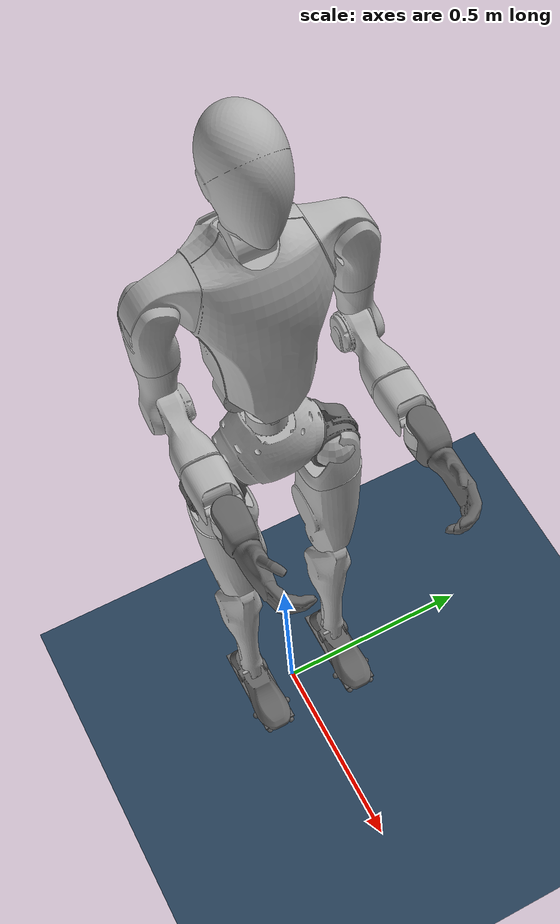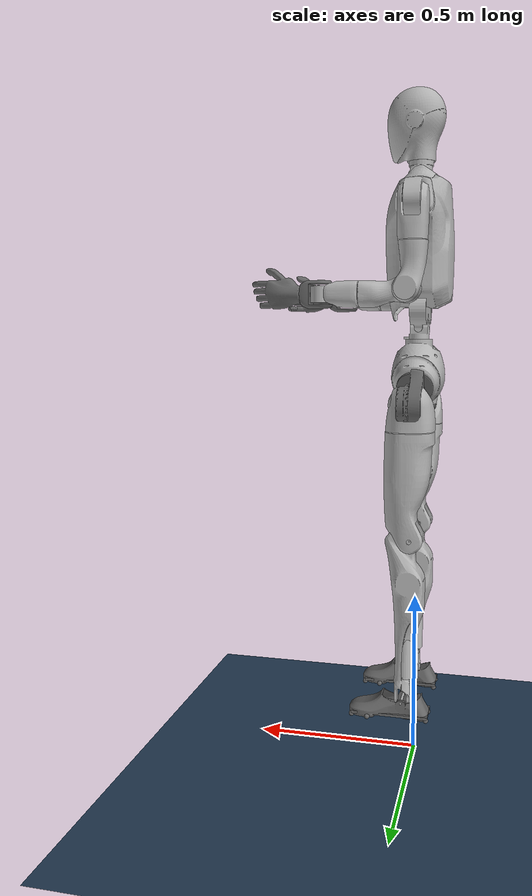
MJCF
<mujoco model="Unitree H2">
  <include file="h2_mujoco.xml"/>
  <statistic center="1 0.7 1.5" extent="0.8"/>
  <visual>
    <headlight diffuse="0.6 0.6 0.6" ambient="0.3 0.3 0.3" specular="0 0 0"/>
    <rgba haze="0.15 0.25 0.35 1"/>
    <global azimuth="-140" elevation="-30"/>
  </visual>
  <asset>
    <texture type="skybox" builtin="flat" rgb1="0 0 0" rgb2="0 0 0" width="512" height="3072"/>
    <texture type="2d" name="groundplane" builtin="checker" mark="edge" rgb1="0.2 0.3 0.4" rgb2="0.1 0.2 0.3" markrgb="0.8 0.8 0.8" width="300" height="300"/>
    <material name="groundplane" texture="groundplane" texuniform="true" texrepeat="5 5" reflectance="0.2"/>
  </asset>
  <worldbody>
    <light pos="0 0 1.5" dir="0 0 -1" directional="true"/>
    <geom name="floor" size="0 0 0.05" type="plane" material="groundplane"/>
  </worldbody>
</mujoco>

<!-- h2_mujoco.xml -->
<mujoco model="H2">
  <compiler angle="radian" meshdir="meshes/"/>

  <default>
     <joint damping="0.05" armature="0.01" frictionloss="0.2"/>
  </default>

  <option timestep="0.001"/>
  <asset>
    <mesh name="pelvis" content_type="model/stl" file="pelvis.stl"/>
    <mesh name="left_hip_pitch_link" content_type="model/stl" file="left_hip_pitch_link.stl"/>
    <mesh name="left_hip_roll_link" content_type="model/stl" file="left_hip_roll_link.stl"/>
    <mesh name="left_hip_yaw_link" content_type="model/stl" file="left_hip_yaw_link.stl"/>
    <mesh name="left_knee_link" content_type="model/stl" file="left_knee_link.stl"/>
    <mesh name="left_ankle_roll_link" content_type="model/stl" file="left_ankle_roll_link.stl"/>
    <mesh name="left_ankle_pitch_link" content_type="model/stl" file="left_ankle_pitch_link.stl"/>
    <mesh name="right_hip_pitch_link" content_type="model/stl" file="right_hip_pitch_link.stl"/>
    <mesh name="right_hip_roll_link" content_type="model/stl" file="right_hip_roll_link.stl"/>
    <mesh name="right_hip_yaw_link" content_type="model/stl" file="right_hip_yaw_link.stl"/>
    <mesh name="right_knee_link" content_type="model/stl" file="right_knee_link.stl"/>
    <mesh name="right_ankle_roll_link" content_type="model/stl" file="right_ankle_roll_link.stl"/>
    <mesh name="right_ankle_pitch_link" content_type="model/stl" file="right_ankle_pitch_link.stl"/>
    <mesh name="waist_yaw_link" content_type="model/stl" file="waist_yaw_link.stl"/>
    <mesh name="waist_roll_link" content_type="model/stl" file="waist_roll_link.stl"/>
    <mesh name="torso_link" content_type="model/stl" file="torso_link.stl"/>
    <mesh name="head_pitch_link" content_type="model/stl" file="head_pitch_link.stl"/>
    <mesh name="head_yaw_link" content_type="model/stl" file="head_yaw_link.stl"/>
    <mesh name="left_shoulder_pitch_link" content_type="model/stl" file="left_shoulder_pitch_link.stl"/>
    <mesh name="left_shoulder_roll_link" content_type="model/stl" file="left_shoulder_roll_link.stl"/>
    <mesh name="left_shoulder_yaw_link" content_type="model/stl" file="left_shoulder_yaw_link.stl"/>
    <mesh name="left_elbow_link" content_type="model/stl" file="left_elbow_link.stl"/>
    <mesh name="left_wrist_roll_link" content_type="model/stl" file="left_wrist_roll_link.stl"/>
    <mesh name="left_wrist_pitch_link" content_type="model/stl" file="left_wrist_pitch_link.stl"/>
    <mesh name="left_wrist_yaw_link" content_type="model/stl" file="left_wrist_yaw_link.stl"/>
    <mesh name="right_shoulder_pitch_link" content_type="model/stl" file="right_shoulder_pitch_link.stl"/>
    <mesh name="right_shoulder_roll_link" content_type="model/stl" file="right_shoulder_roll_link.stl"/>
    <mesh name="right_shoulder_yaw_link" content_type="model/stl" file="right_shoulder_yaw_link.stl"/>
    <mesh name="right_elbow_link" content_type="model/stl" file="right_elbow_link.stl"/>
    <mesh name="right_wrist_roll_link" content_type="model/stl" file="right_wrist_roll_link.stl"/>
    <mesh name="right_wrist_pitch_link" content_type="model/stl" file="right_wrist_pitch_link.stl"/>
    <mesh name="right_wrist_yaw_link" content_type="model/stl" file="right_wrist_yaw_link.stl"/>
  </asset>

  <worldbody>
    <body name="pelvis" pos="0 0 1.2">
      <site name="imu" size="0.01" pos="0.0 0.0 0.0"/>
      <joint name="floating_base_joint" type="free" limited="false" actuatorfrclimited="false"/>
    <geom type="mesh" contype="0" conaffinity="0" group="1" density="0" rgba="0.7 0.7 0.7 1" mesh="pelvis"/>
    <geom type="mesh" rgba="0.7 0.7 0.7 1" mesh="pelvis"/>
    <body name="left_hip_pitch_link" pos="0 0.08038 -0.046407" quat="0.965926 -0.25882 0 0">
      <inertial pos="0.00294368 0.061102 -0.017351" quat="0.89044 0.453883 -0.0133707 -0.0304704" mass="2.8737" diaginertia="0.00537408 0.00421163 0.0036878"/>
      <joint name="left_hip_pitch_joint" pos="0 0 0" axis="0 1 0" range="-2.4526 2.77542" actuatorfrcrange="-360 360"/>
      <geom type="mesh" contype="0" conaffinity="0" group="1" density="0" rgba="0.4 0.4 0.4 1" mesh="left_hip_pitch_link"/>
      <body name="left_hip_roll_link" pos="0.041774 0.0635 -0.019" quat="0.965926 0.25882 0 0">
        <inertial pos="-0.0175789 -0.00607425 -0.041315" quat="-0.165515 0.598251 -0.0524355 0.782273" mass="0.785079" diaginertia="0.0023778 0.00200443 0.0015153"/>
        <joint name="left_hip_roll_joint" pos="0 0 0" axis="1 0 0" range="-0.467441 2.16886" actuatorfrcrange="-360 360"/>
        <geom type="mesh" contype="0" conaffinity="0" group="1" density="0" rgba="0.7 0.7 0.7 1" mesh="left_hip_roll_link"/>
        <geom size="0.05" pos="-0.02 0 0" rgba="0.7 0.7 0.7 1"/>
        <body name="left_hip_yaw_link" pos="-0.028187 -0.0095 -0.0737">
          <inertial pos="0.00069408 -0.0108659 -0.113015" quat="0.621956 -0.0405938 0.0198649 0.781747" mass="7.0875" diaginertia="0.0514013 0.0505964 0.0130063"/>
          <joint name="left_hip_yaw_joint" pos="0 0 0" axis="0 0 1" range="-2.827 2.827" actuatorfrcrange="-360 360"/>
          <geom type="mesh" contype="0" conaffinity="0" group="1" density="0" rgba="0.7 0.7 0.7 1" mesh="left_hip_yaw_link"/>
          <geom type="mesh" rgba="0.7 0.7 0.7 1" mesh="left_hip_yaw_link"/>
          <body name="left_knee_link" pos="-0.010308 0.022549 -0.31959">
            <inertial pos="0.00461331 -0.022549 -0.167155" quat="0.689662 0.00325283 0.00290593 0.724118" mass="4.3534" diaginertia="0.0512388 0.0510884 0.00333998"/>
            <joint name="left_knee_joint" pos="0 0 0" axis="0 1 0" range="-0.08725 2.53025" actuatorfrcrange="-360 360"/>
            <geom type="mesh" contype="0" conaffinity="0" group="1" density="0" rgba="0.7 0.7 0.7 1" mesh="left_knee_link"/>
            <geom size="0.025 0.175" pos="0.01 -0.022549 -0.25" type="cylinder" rgba="0.7 0.7 0.7 1"/>
            <body name="left_ankle_roll_link" pos="0.032719 -0.023002 -0.49662">
              <inertial pos="-0.0174063 6.424e-05 -0.0002146" quat="0.499157 0.502573 -0.497809 0.500449" mass="0.123182" diaginertia="4.00501e-05 3.43207e-05 1.44993e-05"/>
              <joint name="left_ankle_roll_joint" pos="0 0 0" axis="1 0 0" range="-0.349066 0.296706" actuatorfrcrange="-19 19"/>
              <geom type="mesh" contype="0" conaffinity="0" group="1" density="0" rgba="0.7 0.7 0.7 1" mesh="left_ankle_roll_link"/>
              <body name="left_ankle_pitch_link" pos="-0.014516 -0.0373 0">
                <inertial pos="0.032059 0.0370053 -0.0288282" quat="6.19452e-05 0.72345 -3.0004e-05 0.690377" mass="0.894967" diaginertia="0.00438317 0.00410964 0.000599978"/>
                <joint name="left_ankle_pitch_joint" pos="0 0 0" axis="0 1 0" range="-1.13446 0.610865" actuatorfrcrange="-66.88 66.88"/>
                <geom type="mesh" contype="0" conaffinity="0" group="1" density="0" rgba="0.4 0.4 0.4 1" mesh="left_ankle_pitch_link"/>
                <geom size="0.008" pos="-0.075 0.066 -0.05" rgba="0.4 0.4 0.4 1"/>
                <geom size="0.008" pos="-0.075 0.007 -0.05" rgba="0.4 0.4 0.4 1"/>
                <geom size="0.008" pos="0.1 0.08 -0.048" rgba="0.4 0.4 0.4 1"/>
                <geom size="0.008" pos="0.1 -0.007 -0.048" rgba="0.4 0.4 0.4 1"/>
                <geom size="0.008" pos="0.15 0.066 -0.05" rgba="0.4 0.4 0.4 1"/>
                <geom size="0.008" pos="0.15 0.007 -0.05" rgba="0.4 0.4 0.4 1"/>
                <geom size="0.115 0.04 0.004" pos="0.035 0.0365 -0.04" type="box" rgba="0.4 0.4 0.4 1"/>
              </body>
            </body>
          </body>
        </body>
      </body>
    </body>
    <body name="right_hip_pitch_link" pos="0 -0.08038 -0.046407" quat="0.965926 0.25882 0 0">
      <inertial pos="0.00294368 -0.061102 -0.017351" quat="0.453883 0.89044 0.0304704 0.0133707" mass="2.8737" diaginertia="0.00537408 0.00421163 0.0036878"/>
      <joint name="right_hip_pitch_joint" pos="0 0 0" axis="0 1 0" range="-2.4526 2.77542" actuatorfrcrange="-360 360"/>
      <geom type="mesh" contype="0" conaffinity="0" group="1" density="0" rgba="0.4 0.4 0.4 1" mesh="right_hip_pitch_link"/>
      <body name="right_hip_roll_link" pos="0.041774 -0.0635 -0.019" quat="0.965926 -0.25882 0 0">
        <inertial pos="-0.0175789 0.00607425 -0.041315" quat="0.165515 0.598251 0.0524355 0.782273" mass="0.75122" diaginertia="0.0023778 0.00200443 0.0015153"/>
        <joint name="right_hip_roll_joint" pos="0 0 0" axis="1 0 0" range="-2.16886 0.467441" actuatorfrcrange="-360 360"/>
        <geom type="mesh" contype="0" conaffinity="0" group="1" density="0" rgba="0.7 0.7 0.7 1" mesh="right_hip_roll_link"/>
        <geom size="0.05" pos="-0.038 0 0" rgba="0.7 0.7 0.7 1"/>
        <body name="right_hip_yaw_link" pos="-0.028187 0.0095 -0.0737">
          <inertial pos="0.00069408 0.0108659 -0.113015" quat="0.781747 0.0198649 -0.0405938 0.621956" mass="7.0875" diaginertia="0.0514013 0.0505964 0.0130063"/>
          <joint name="right_hip_yaw_joint" pos="0 0 0" axis="0 0 1" range="-2.827 2.827" actuatorfrcrange="-360 360"/>
          <geom type="mesh" contype="0" conaffinity="0" group="1" density="0" rgba="0.7 0.7 0.7 1" mesh="right_hip_yaw_link"/>
          <geom type="mesh" rgba="0.7 0.7 0.7 1" mesh="right_hip_yaw_link"/>
          <body name="right_knee_link" pos="-0.010308 -0.022549 -0.31959">
            <inertial pos="0.00461331 0.022549 -0.167155" quat="0.724118 0.00290593 0.00325283 0.689662" mass="4.3534" diaginertia="0.0512388 0.0510884 0.00333998"/>
            <joint name="right_knee_joint" pos="0 0 0" axis="0 1 0" range="-0.08725 2.53025" actuatorfrcrange="-360 360"/>
            <geom type="mesh" contype="0" conaffinity="0" group="1" density="0" rgba="0.7 0.7 0.7 1" mesh="right_knee_link"/>
            <geom size="0.025 0.175" pos="0.01 0.022549 -0.25" type="cylinder" rgba="0.7 0.7 0.7 1"/>
            <body name="right_ankle_roll_link" pos="0.032719 0.023002 -0.49662">
              <inertial pos="-0.0174063 -6.424e-05 -0.0002146" quat="0.502573 0.499157 -0.500449 0.497809" mass="0.123182" diaginertia="4.00501e-05 3.43207e-05 1.44993e-05"/>
              <joint name="right_ankle_roll_joint" pos="0 0 0" axis="1 0 0" range="-0.296706 0.349066" actuatorfrcrange="-19 19"/>
              <geom type="mesh" contype="0" conaffinity="0" group="1" density="0" rgba="0.7 0.7 0.7 1" mesh="right_ankle_roll_link"/>
              <body name="right_ankle_pitch_link" pos="-0.014516 0.0373 0">
                <inertial pos="0.032059 -0.0370053 -0.0288282" quat="-6.19452e-05 0.72345 3.0004e-05 0.690377" mass="0.894967" diaginertia="0.00438317 0.00410964 0.000599978"/>
                <joint name="right_ankle_pitch_joint" pos="0 0 0" axis="0 1 0" range="-1.13446 0.610865" actuatorfrcrange="-66.88 66.88"/>
                <geom type="mesh" contype="0" conaffinity="0" group="1" density="0" rgba="0.4 0.4 0.4 1" mesh="right_ankle_pitch_link"/>
                <geom size="0.008" pos="-0.075 -0.066 -0.05" rgba="0.4 0.4 0.4 1"/>
                <geom size="0.008" pos="-0.075 -0.007 -0.05" rgba="0.4 0.4 0.4 1"/>
                <geom size="0.008" pos="0.1 -0.08 -0.048" rgba="0.4 0.4 0.4 1"/>
                <geom size="0.008" pos="0.1 0.007 -0.048" rgba="0.4 0.4 0.4 1"/>
                <geom size="0.008" pos="0.15 -0.066 -0.05" rgba="0.4 0.4 0.4 1"/>
                <geom size="0.008" pos="0.15 -0.007 -0.05" rgba="0.4 0.4 0.4 1"/>
                <geom size="0.115 0.04 0.004" pos="0.035 -0.0365 -0.04" type="box" rgba="0.4 0.4 0.4 1"/>
              </body>
            </body>
          </body>
        </body>
      </body>
    </body>
    <body name="waist_yaw_link" pos="0 0 0.090537">
      <inertial pos="0.00648295 1.018e-05 0.0176063" quat="0.000115436 0.720073 0.000256241 0.693898" mass="0.312936" diaginertia="0.00033891 0.00028436 0.00012018"/>
      <joint name="waist_yaw_joint" pos="0 0 0" axis="0 0 1" range="-1.7453 1.7453" actuatorfrcrange="-120 120"/>
      <geom type="mesh" contype="0" conaffinity="0" group="1" density="0" rgba="0.7 0.7 0.7 1" mesh="waist_yaw_link"/>
      <body name="waist_roll_link" pos="0 0 0.0325">
        <inertial pos="0 0.00061119 0" quat="0.5 0.5 -0.5 0.5" mass="0.138419" diaginertia="2.304e-05 1.668e-05 1.509e-05"/>
        <joint name="waist_roll_joint" pos="0 0 0" axis="1 0 0" range="-0.5236 0.5236" actuatorfrcrange="-180 180"/>
        <geom type="mesh" contype="0" conaffinity="0" group="1" density="0" rgba="0.7 0.7 0.7 1" mesh="waist_roll_link"/>
        <body name="torso_link">
          <site name="secondary_imu" size="0.01" pos="0.0 0.0 0.0"/>
          <inertial pos="0.00740421 0.00628045 0.215575" quat="0.99932 -0.0321662 -0.00775231 0.0162839" mass="18.532" diaginertia="0.287321 0.26278 0.0934525"/>
          <joint name="waist_pitch_joint" pos="0 0 0" axis="0 1 0" range="-0.43633 0.5236" actuatorfrcrange="-180 180"/>
          <geom type="mesh" contype="0" conaffinity="0" group="1" density="0" rgba="0.7 0.7 0.7 1" mesh="torso_link"/>
          <geom type="mesh" rgba="0.7 0.7 0.7 1" mesh="torso_link"/>
          <body name="head_pitch_link" pos="-0.0001147 -0.0189 0.4218">
            <inertial pos="0.000126 0.018817 0.052939" quat="0.999996 -0.000955249 -0.00262397 -0.000580497" mass="1.82" diaginertia="0.00538697 0.00532442 0.00140982"/>
            <joint name="head_pitch_joint" pos="0 0 0" axis="0 1 0" range="-0.5236 0.83775" actuatorfrcrange="-50 50"/>
            <geom type="mesh" contype="0" conaffinity="0" group="1" density="0" rgba="0.7 0.7 0.7 1" mesh="head_pitch_link"/>
            <body name="head_yaw_link" pos="0 0.0189 0.1335">
              <inertial pos="0.023654 -0.000734 0.042315" quat="0.667311 -0.227767 -0.231751 0.670156" mass="1.3" diaginertia="0.00535274 0.00472336 0.00378091"/>
              <joint name="head_yaw_joint" pos="0 0 0" axis="0 0 1" range="-1.7453 1.7453" actuatorfrcrange="-50 50"/>
              <geom type="mesh" contype="0" conaffinity="0" group="1" density="0" rgba="0.7 0.7 0.7 1" mesh="head_yaw_link"/>
              <geom type="mesh" rgba="0.7 0.7 0.7 1" mesh="head_yaw_link"/>
            </body>
          </body>
          <body name="left_shoulder_pitch_link" pos="0.0030848 0.11 0.36008" quat="0.990959 0.134164 0 0">
            <inertial pos="-0.0027817 0.050393 -0.023914" quat="0.959427 0.279803 0.00644957 0.0341716" mass="1.1927" diaginertia="0.00174925 0.00162902 0.000852428"/>
            <joint name="left_shoulder_pitch_joint" pos="0 0 0" axis="0 1 0" range="-2.618 1.833" actuatorfrcrange="-130 130"/>
            <geom type="mesh" contype="0" conaffinity="0" group="1" density="0" rgba="0.7 0.7 0.7 1" mesh="left_shoulder_pitch_link"/>
            <geom type="mesh" rgba="0.7 0.7 0.7 1" mesh="left_shoulder_pitch_link"/>
            <body name="left_shoulder_roll_link" pos="-0.0032074 0.059938 -0.039865" quat="0.990959 -0.134164 0 0">
              <inertial pos="-0.00126759 0.00399799 -0.0665267" quat="0.719226 0.0130341 -0.00543937 0.694633" mass="1.10983" diaginertia="0.00193836 0.00176489 0.00106378"/>
              <joint name="left_shoulder_roll_joint" pos="0 0 0" axis="1 0 0" range="-0.517 2.494" actuatorfrcrange="-60 60"/>
              <geom type="mesh" contype="0" conaffinity="0" group="1" density="0" rgba="0.7 0.7 0.7 1" mesh="left_shoulder_roll_link"/>
              <geom type="mesh" rgba="0.7 0.7 0.7 1" mesh="left_shoulder_roll_link"/>
              <body name="left_shoulder_yaw_link" pos="-0.0025601 0.0036752 -0.10421">
                <inertial pos="0.00265957 0.0123454 -0.059622" quat="0.655577 0.0514587 -0.154929 0.737271" mass="0.352739" diaginertia="0.000897689 0.000854204 0.000287447"/>
                <joint name="left_shoulder_yaw_joint" pos="0 0 0" axis="0 0 1" range="-2.618 2.618" actuatorfrcrange="-60 60"/>
                <geom type="mesh" contype="0" conaffinity="0" group="1" density="0" rgba="0.7 0.7 0.7 1" mesh="left_shoulder_yaw_link"/>
                <geom type="mesh" rgba="0.7 0.7 0.7 1" mesh="left_shoulder_yaw_link"/>
                <body name="left_elbow_link" pos="0.016655 0.02211 -0.12792">
                  <inertial pos="0.0506767 -0.0216173 -0.00672238" quat="0.162352 0.731329 0.192833 0.633732" mass="1.70612" diaginertia="0.00522743 0.00521428 0.00111897"/>
                  <joint name="left_elbow_joint" pos="0 0 0" axis="0 1 0" range="-0.986 3.071" actuatorfrcrange="-60 60"/>
                  <geom type="mesh" contype="0" conaffinity="0" group="1" density="0" rgba="0.7 0.7 0.7 1" mesh="left_elbow_link"/>
                  <geom type="mesh" rgba="0.7 0.7 0.7 1" mesh="left_elbow_link"/>
                  <body name="left_wrist_roll_link" pos="0.13119 -0.021497 -0.013769">
                    <inertial pos="0.035915 -0.00154506 0.00012879" quat="0.349429 0.616315 -0.3656 0.603649" mass="0.77426" diaginertia="0.000715547 0.000661189 0.000632495"/>
                    <joint name="left_wrist_roll_joint" pos="0 0 0" axis="1 0 0" range="-2.618 2.618" actuatorfrcrange="-60 60"/>
                    <geom type="mesh" contype="0" conaffinity="0" group="1" density="0" rgba="0.7 0.7 0.7 1" mesh="left_wrist_roll_link"/>
                    <body name="left_wrist_pitch_link" pos="0.037994 0.031144 0.00045104">
                      <inertial pos="0.0651093 -0.0317607 0.00235463" quat="0.491682 0.228754 0.718653 0.435268" mass="0.615258" diaginertia="0.000423535 0.000417983 0.000396162"/>
                      <joint name="left_wrist_pitch_joint" pos="0 0 0" axis="0 1 0" range="-0.576 0.576" actuatorfrcrange="-10 10"/>
                      <geom type="mesh" contype="0" conaffinity="0" group="1" density="0" rgba="0.7 0.7 0.7 1" mesh="left_wrist_pitch_link"/>
                      <body name="left_wrist_yaw_link" pos="0.069283 -0.031045 -0.0006247">
                        <inertial pos="0.0800267 -0.00476807 0.00340465" quat="0.488112 0.56744 0.412641 0.51912" mass="0.616082" diaginertia="0.00189912 0.00166583 0.000524241"/>
                        <joint name="left_wrist_yaw_joint" pos="0 0 0" axis="0 0 1" range="-1.22 1.22" actuatorfrcrange="-10 10"/>
                        <geom type="mesh" contype="0" conaffinity="0" group="1" density="0" rgba="0.4 0.4 0.4 1" mesh="left_wrist_yaw_link"/>
                        <geom type="mesh" rgba="0.4 0.4 0.4 1" mesh="left_wrist_yaw_link"/>
                      </body>
                    </body>
                  </body>
                </body>
              </body>
            </body>
          </body>
          <body name="right_shoulder_pitch_link" pos="0.0030848 -0.11 0.36008" quat="0.990959 -0.134164 0 0">
            <inertial pos="-0.0027814 -0.050393 -0.023914" quat="0.959425 -0.279804 0.00643587 -0.0342398" mass="1.1927" diaginertia="0.00174925 0.00162902 0.000852428"/>
            <joint name="right_shoulder_pitch_joint" pos="0 0 0" axis="0 1 0" range="-2.618 1.833" actuatorfrcrange="-130 130"/>
            <geom type="mesh" contype="0" conaffinity="0" group="1" density="0" rgba="0.7 0.7 0.7 1" mesh="right_shoulder_pitch_link"/>
            <geom type="mesh" rgba="0.7 0.7 0.7 1" mesh="right_shoulder_pitch_link"/>
            <body name="right_shoulder_roll_link" pos="-0.0032074 -0.059938 -0.039865" quat="0.990959 0.134164 0 0">
              <inertial pos="-0.00126782 -0.0039981 -0.0665261" quat="0.694607 -0.0054503 0.0130148 0.719251" mass="1.10982" diaginertia="0.00193838 0.00176496 0.00106379"/>
              <joint name="right_shoulder_roll_joint" pos="0 0 0" axis="1 0 0" range="-2.494 0.517" actuatorfrcrange="-60 60"/>
              <geom type="mesh" contype="0" conaffinity="0" group="1" density="0" rgba="0.7 0.7 0.7 1" mesh="right_shoulder_roll_link"/>
              <geom type="mesh" rgba="0.7 0.7 0.7 1" mesh="right_shoulder_roll_link"/>
              <body name="right_shoulder_yaw_link" pos="-0.0025601 -0.0036752 -0.10421">
                <inertial pos="0.00266059 -0.0123451 -0.0596234" quat="0.737262 -0.154921 0.0514524 0.65559" mass="0.352742" diaginertia="0.000897692 0.000854184 0.000287444"/>
                <joint name="right_shoulder_yaw_joint" pos="0 0 0" axis="0 0 1" range="-2.618 2.618" actuatorfrcrange="-60 60"/>
                <geom type="mesh" contype="0" conaffinity="0" group="1" density="0" rgba="0.7 0.7 0.7 1" mesh="right_shoulder_yaw_link"/>
                <geom type="mesh" rgba="0.7 0.7 0.7 1" mesh="right_shoulder_yaw_link"/>
                <body name="right_elbow_link" pos="0.016655 -0.02211 -0.12792">
                  <inertial pos="0.0506784 0.0216171 -0.00672338" quat="-0.1624 0.731318 -0.192894 0.633713" mass="1.70617" diaginertia="0.00522767 0.0052145 0.00111905"/>
                  <joint name="right_elbow_joint" pos="0 0 0" axis="0 1 0" range="-0.986 3.071" actuatorfrcrange="-60 60"/>
                  <geom type="mesh" contype="0" conaffinity="0" group="1" density="0" rgba="0.7 0.7 0.7 1" mesh="right_elbow_link"/>
                  <geom type="mesh" rgba="0.7 0.7 0.7 1" mesh="right_elbow_link"/>
                  <body name="right_wrist_roll_link" pos="0.13119 0.021497 -0.013769">
                    <inertial pos="0.0359137 0.00155865 0.00014187" quat="0.61587 0.348982 -0.602387 0.368844" mass="0.774265" diaginertia="0.00071595 0.000661595 0.000632525"/>
                    <joint name="right_wrist_roll_joint" pos="0 0 0" axis="1 0 0" range="-2.618 2.618" actuatorfrcrange="-60 60"/>
                    <geom type="mesh" contype="0" conaffinity="0" group="1" density="0" rgba="0.7 0.7 0.7 1" mesh="right_wrist_roll_link"/>
                    <body name="right_wrist_pitch_link" pos="0.037994 -0.031144 0.00045104">
                      <inertial pos="0.0651131 0.0317523 0.00231986" quat="0.440426 0.716762 0.242507 0.483185" mass="0.615837" diaginertia="0.000424256 0.000418373 0.000396861"/>
                      <joint name="right_wrist_pitch_joint" pos="0 0 0" axis="0 1 0" range="-0.576 0.576" actuatorfrcrange="-10 10"/>
                      <geom type="mesh" contype="0" conaffinity="0" group="1" density="0" rgba="0.7 0.7 0.7 1" mesh="right_wrist_pitch_link"/>
                      <body name="right_wrist_yaw_link" pos="0.069283 0.031045 -0.0006247">
                        <inertial pos="0.0800267 0.00476817 0.00340501" quat="0.519117 0.41264 0.567453 0.488102" mass="0.616082" diaginertia="0.00189915 0.00166585 0.00052423"/>
                        <joint name="right_wrist_yaw_joint" pos="0 0 0" axis="0 0 1" range="-1.22 1.22" actuatorfrcrange="-10 10"/>
                        <geom type="mesh" contype="0" conaffinity="0" group="1" density="0" rgba="0.4 0.4 0.4 1" mesh="right_wrist_yaw_link"/>
                        <geom type="mesh" rgba="0.4 0.4 0.4 1" mesh="right_wrist_yaw_link"/>
                      </body>
                    </body>
                  </body>
                </body>
              </body>
            </body>
          </body>
        </body>
      </body>
    </body>
    </body>
  </worldbody>

  <actuator>
    <motor name="left_hip_pitch" joint="left_hip_pitch_joint" ctrlrange="-360 360" />
    <motor name="left_hip_roll" joint="left_hip_roll_joint" ctrlrange="-360 360" />
    <motor name="left_hip_yaw" joint="left_hip_yaw_joint" ctrlrange="-360 360" />
    <motor name="left_knee" joint="left_knee_joint" ctrlrange="-360 360" />
    <motor name="left_ankle_roll" joint="left_ankle_roll_joint" ctrlrange="-19 19" />
    <motor name="left_ankle_pitch" joint="left_ankle_pitch_joint" ctrlrange="-66.88 66.88" />

    <motor name="right_hip_pitch" joint="right_hip_pitch_joint" ctrlrange="-360 360" />
    <motor name="right_hip_roll" joint="right_hip_roll_joint" ctrlrange="-360 360" />
    <motor name="right_hip_yaw" joint="right_hip_yaw_joint" ctrlrange="-360 360" />
    <motor name="right_knee" joint="right_knee_joint" ctrlrange="-360 360" />
    <motor name="right_ankle_roll" joint="right_ankle_roll_joint" ctrlrange="-19 19" />
    <motor name="right_ankle_pitch" joint="right_ankle_pitch_joint" ctrlrange="-66.88 66.88" />

    <motor name="waist_yaw" joint="waist_yaw_joint" ctrlrange="-120 120" />
    <motor name="waist_roll" joint="waist_roll_joint" ctrlrange="-180 180" />
    <motor name="waist_pitch" joint="waist_pitch_joint" ctrlrange="-180 180" />

    <motor name="left_shoulder_pitch" joint="left_shoulder_pitch_joint" ctrlrange="-130 130" />
    <motor name="left_shoulder_roll" joint="left_shoulder_roll_joint" ctrlrange="-60 60" />
    <motor name="left_shoulder_yaw" joint="left_shoulder_yaw_joint" ctrlrange="-60 60" />
    <motor name="left_elbow" joint="left_elbow_joint" ctrlrange="-60 60" />
    <motor name="left_wrist_roll" joint="left_wrist_roll_joint" ctrlrange="-60 60" />
    <motor name="left_wrist_pitch" joint="left_wrist_pitch_joint" ctrlrange="-10 10" />
    <motor name="left_wrist_yaw" joint="left_wrist_yaw_joint" ctrlrange="-10 10" />

    <motor name="right_shoulder_pitch" joint="right_shoulder_pitch_joint" ctrlrange="-130 130" />
    <motor name="right_shoulder_roll" joint="right_shoulder_roll_joint" ctrlrange="-60 60" />
    <motor name="right_shoulder_yaw" joint="right_shoulder_yaw_joint" ctrlrange="-60 60" />
    <motor name="right_elbow" joint="right_elbow_joint" ctrlrange="-60 60" />
    <motor name="right_wrist_roll" joint="right_wrist_roll_joint" ctrlrange="-60 60" />
    <motor name="right_wrist_pitch" joint="right_wrist_pitch_joint" ctrlrange="-10 10" />
    <motor name="right_wrist_yaw" joint="right_wrist_yaw_joint" ctrlrange="-10 10" />

    <motor name="head_pitch" joint="head_pitch_joint" ctrlrange="-50 50" />
    <motor name="head_yaw" joint="head_yaw_joint" ctrlrange="-50 50" />
  </actuator>

  <sensor>
    <jointpos name="left_hip_pitch_pos" joint="left_hip_pitch_joint" />
    <jointpos name="left_hip_roll_pos" joint="left_hip_roll_joint" />
    <jointpos name="left_hip_yaw_pos" joint="left_hip_yaw_joint" />
    <jointpos name="left_knee_pos" joint="left_knee_joint" />
    <jointpos name="left_ankle_roll_pos" joint="left_ankle_roll_joint" />
    <jointpos name="left_ankle_pitch_pos" joint="left_ankle_pitch_joint" />
    <jointpos name="right_hip_pitch_pos" joint="right_hip_pitch_joint" />
    <jointpos name="right_hip_roll_pos" joint="right_hip_roll_joint" />
    <jointpos name="right_hip_yaw_pos" joint="right_hip_yaw_joint" />
    <jointpos name="right_knee_pos" joint="right_knee_joint" />
    <jointpos name="right_ankle_roll_pos" joint="right_ankle_roll_joint" />
    <jointpos name="right_ankle_pitch_pos" joint="right_ankle_pitch_joint" />
    <jointpos name="waist_yaw_pos" joint="waist_yaw_joint" />
    <jointpos name="waist_roll_pos" joint="waist_roll_joint" />
    <jointpos name="waist_pitch_pos" joint="waist_pitch_joint" />
    <jointpos name="left_shoulder_pitch_pos" joint="left_shoulder_pitch_joint" />
    <jointpos name="left_shoulder_roll_pos" joint="left_shoulder_roll_joint" />
    <jointpos name="left_shoulder_yaw_pos" joint="left_shoulder_yaw_joint" />
    <jointpos name="left_elbow_pos" joint="left_elbow_joint" />
    <jointpos name="left_wrist_roll_pos" joint="left_wrist_roll_joint" />
    <jointpos name="left_wrist_pitch_pos" joint="left_wrist_pitch_joint" />
    <jointpos name="left_wrist_yaw_pos" joint="left_wrist_yaw_joint" />
    <jointpos name="right_shoulder_pitch_pos" joint="right_shoulder_pitch_joint" />
    <jointpos name="right_shoulder_roll_pos" joint="right_shoulder_roll_joint" />
    <jointpos name="right_shoulder_yaw_pos" joint="right_shoulder_yaw_joint" />
    <jointpos name="right_elbow_pos" joint="right_elbow_joint" />
    <jointpos name="right_wrist_roll_pos" joint="right_wrist_roll_joint" />
    <jointpos name="right_wrist_pitch_pos" joint="right_wrist_pitch_joint" />
    <jointpos name="right_wrist_yaw_pos" joint="right_wrist_yaw_joint" />
    <jointpos name="head_pitch_pos" joint="head_pitch_joint" />
    <jointpos name="head_yaw_pos" joint="head_yaw_joint" />

    <jointvel name="left_hip_pitch_vel" joint="left_hip_pitch_joint" />
    <jointvel name="left_hip_roll_vel" joint="left_hip_roll_joint" />
    <jointvel name="left_hip_yaw_vel" joint="left_hip_yaw_joint" />
    <jointvel name="left_knee_vel" joint="left_knee_joint" />
    <jointvel name="left_ankle_roll_vel" joint="left_ankle_roll_joint" />
    <jointvel name="left_ankle_pitch_vel" joint="left_ankle_pitch_joint" />
    <jointvel name="right_hip_pitch_vel" joint="right_hip_pitch_joint" />
    <jointvel name="right_hip_roll_vel" joint="right_hip_roll_joint" />
    <jointvel name="right_hip_yaw_vel" joint="right_hip_yaw_joint" />
    <jointvel name="right_knee_vel" joint="right_knee_joint" />
    <jointvel name="right_ankle_roll_vel" joint="right_ankle_roll_joint" />
    <jointvel name="right_ankle_pitch_vel" joint="right_ankle_pitch_joint" />
    <jointvel name="waist_yaw_vel" joint="waist_yaw_joint" />
    <jointvel name="waist_roll_vel" joint="waist_roll_joint" />
    <jointvel name="waist_pitch_vel" joint="waist_pitch_joint" />
    <jointvel name="left_shoulder_pitch_vel" joint="left_shoulder_pitch_joint" />
    <jointvel name="left_shoulder_roll_vel" joint="left_shoulder_roll_joint" />
    <jointvel name="left_shoulder_yaw_vel" joint="left_shoulder_yaw_joint" />
    <jointvel name="left_elbow_vel" joint="left_elbow_joint" />
    <jointvel name="left_wrist_roll_vel" joint="left_wrist_roll_joint" />
    <jointvel name="left_wrist_pitch_vel" joint="left_wrist_pitch_joint" />
    <jointvel name="left_wrist_yaw_vel" joint="left_wrist_yaw_joint" />
    <jointvel name="right_shoulder_pitch_vel" joint="right_shoulder_pitch_joint" />
    <jointvel name="right_shoulder_roll_vel" joint="right_shoulder_roll_joint" />
    <jointvel name="right_shoulder_yaw_vel" joint="right_shoulder_yaw_joint" />
    <jointvel name="right_elbow_vel" joint="right_elbow_joint" />
    <jointvel name="right_wrist_roll_vel" joint="right_wrist_roll_joint" />
    <jointvel name="right_wrist_pitch_vel" joint="right_wrist_pitch_joint" />
    <jointvel name="right_wrist_yaw_vel" joint="right_wrist_yaw_joint" />
    <jointvel name="head_pitch_vel" joint="head_pitch_joint" />
    <jointvel name="head_yaw_vel" joint="head_yaw_joint" />

    <jointactuatorfrc name="left_hip_pitch_torque" joint="left_hip_pitch_joint" />
    <jointactuatorfrc name="left_hip_roll_torque" joint="left_hip_roll_joint" />
    <jointactuatorfrc name="left_hip_yaw_torque" joint="left_hip_yaw_joint" />
    <jointactuatorfrc name="left_knee_torque" joint="left_knee_joint" />
    <jointactuatorfrc name="left_ankle_roll_torque" joint="left_ankle_roll_joint" />
    <jointactuatorfrc name="left_ankle_pitch_torque" joint="left_ankle_pitch_joint" />
    <jointactuatorfrc name="right_hip_pitch_torque" joint="right_hip_pitch_joint" />
    <jointactuatorfrc name="right_hip_roll_torque" joint="right_hip_roll_joint" />
    <jointactuatorfrc name="right_hip_yaw_torque" joint="right_hip_yaw_joint" />
    <jointactuatorfrc name="right_knee_torque" joint="right_knee_joint" />
    <jointactuatorfrc name="right_ankle_roll_torque" joint="right_ankle_roll_joint" />
    <jointactuatorfrc name="right_ankle_pitch_torque" joint="right_ankle_pitch_joint" />
    <jointactuatorfrc name="waist_yaw_torque" joint="waist_yaw_joint" />
    <jointactuatorfrc name="waist_roll_torque" joint="waist_roll_joint" />
    <jointactuatorfrc name="waist_pitch_torque" joint="waist_pitch_joint" />
    <jointactuatorfrc name="left_shoulder_pitch_torque" joint="left_shoulder_pitch_joint" />
    <jointactuatorfrc name="left_shoulder_roll_torque" joint="left_shoulder_roll_joint" />
    <jointactuatorfrc name="left_shoulder_yaw_torque" joint="left_shoulder_yaw_joint" />
    <jointactuatorfrc name="left_elbow_torque" joint="left_elbow_joint" />
    <jointactuatorfrc name="left_wrist_roll_torque" joint="left_wrist_roll_joint" />
    <jointactuatorfrc name="left_wrist_pitch_torque" joint="left_wrist_pitch_joint" />
    <jointactuatorfrc name="left_wrist_yaw_torque" joint="left_wrist_yaw_joint" />
    <jointactuatorfrc name="right_shoulder_pitch_torque" joint="right_shoulder_pitch_joint" />
    <jointactuatorfrc name="right_shoulder_roll_torque" joint="right_shoulder_roll_joint" />
    <jointactuatorfrc name="right_shoulder_yaw_torque" joint="right_shoulder_yaw_joint" />
    <jointactuatorfrc name="right_elbow_torque" joint="right_elbow_joint" />
    <jointactuatorfrc name="right_wrist_roll_torque" joint="right_wrist_roll_joint" />
    <jointactuatorfrc name="right_wrist_pitch_torque" joint="right_wrist_pitch_joint" />
    <jointactuatorfrc name="right_wrist_yaw_torque" joint="right_wrist_yaw_joint" />
    <jointactuatorfrc name="head_pitch_torque" joint="head_pitch_joint" />
    <jointactuatorfrc name="head_yaw_torque" joint="head_yaw_joint" />

    <framequat name="imu_quat" objtype="site" objname="imu" />
    <gyro name="imu_gyro" site="imu" />
    <accelerometer name="imu_acc" site="imu" />

    <framepos name="frame_pos" objtype="site" objname="imu" />
    <framelinvel name="frame_vel" objtype="site" objname="imu" />

    <framequat name="secondary_imu_quat" objtype="site" objname="secondary_imu" />
    <gyro name="secondary_imu_gyro" site="secondary_imu" noise="5e-4" cutoff="34.9" />
    <accelerometer name="secondary_imu_acc" site="secondary_imu" noise="1e-2" cutoff="157" />
  </sensor>
</mujoco>
